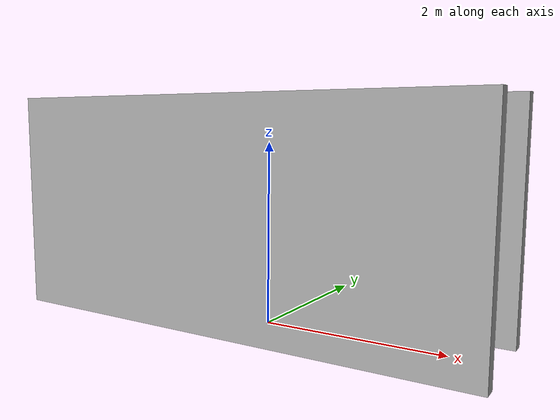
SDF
<?xml version='1.0'?>
<sdf version='1.7'>
  <model name='test_ver1'>
    <pose>-0.215 -0.06 0 0 -0 0</pose>
    <link name='Wall_2'>
      <collision name='Wall_2_Collision'>
        <geometry>
          <box>
            <size>5.5 0.15 2.5</size>
          </box>
        </geometry>
        <pose>0 0 1.25 0 -0 0</pose>
      </collision>
      <visual name='Wall_2_Visual'>
        <pose>0 0 1.25 0 -0 0</pose>
        <geometry>
          <box>
            <size>5.5 0.15 2.5</size>
          </box>
        </geometry>
        <material>
          <script>
            <uri>file://media/materials/scripts/gazebo.material</uri>
            <name>Gazebo/Grey</name>
          </script>
          <ambient>1 1 1 1</ambient>
        </material>
        <meta>
          <layer>0</layer>
        </meta>
      </visual>
      <pose>-0.02 0.64 0 0 -0 0</pose>
    </link>
    <link name='Wall_6'>
      <collision name='Wall_6_Collision'>
        <geometry>
          <box>
            <size>5.5 0.15 2.5</size>
          </box>
        </geometry>
        <pose>0 0 1.25 0 -0 0</pose>
      </collision>
      <visual name='Wall_6_Visual'>
        <pose>0 0 1.25 0 -0 0</pose>
        <geometry>
          <box>
            <size>5.5 0.15 2.5</size>
          </box>
        </geometry>
        <material>
          <script>
            <uri>file://media/materials/scripts/gazebo.material</uri>
            <name>Gazebo/Grey</name>
          </script>
          <ambient>1 1 1 1</ambient>
        </material>
        <meta>
          <layer>0</layer>
        </meta>
      </visual>
      <pose>0.02 -0.64 0 0 -0 0</pose>
    </link>
    <static>1</static>
  </model>
</sdf>
